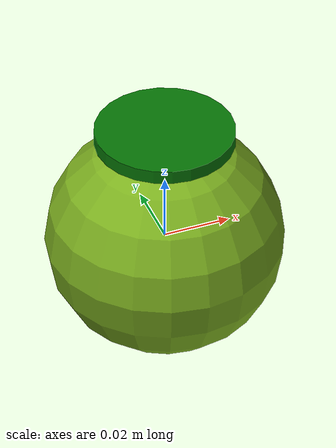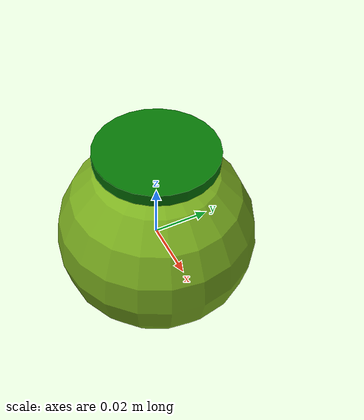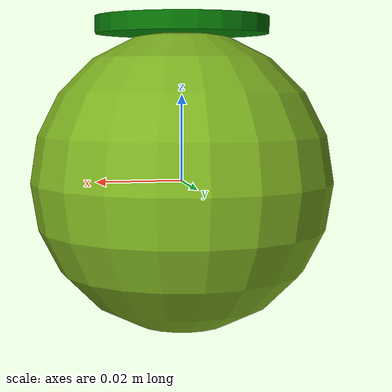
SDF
<?xml version="1.0"?>
<sdf version="1.10">
  <model name="strawberry_unripe_textured">
    <static>false</static>
    <self_collide>false</self_collide>
    <link name="fruit_link">
      <gravity>false</gravity>
      <velocity_decay><linear>0.5</linear><angular>0.5</angular></velocity_decay>
      <inertial>
        <mass>0.030</mass>
        <inertia><ixx>0.0000147</ixx><iyy>0.0000147</iyy><izz>0.0000147</izz></inertia>
      </inertial>
      <collision name="fruit_collision">
        <geometry><sphere><radius>0.035</radius></sphere></geometry>
        <surface><friction><ode><mu>1.0</mu><mu2>1.0</mu2></ode></friction></surface>
      </collision>
      <visual name="fruit_visual">
        <geometry><sphere><radius>0.035</radius></sphere></geometry>
        <material>
          <ambient>0.18 0.34 0.04 1</ambient>
          <diffuse>0.48 0.68 0.12 1</diffuse>
          <specular>0.06 0.06 0.06 1</specular>
          <pbr><metal>
            <albedo_map>model://strawberry_unripe_textured/materials/textures/unripe_strawberry_skin_v1.png</albedo_map>
            <metalness>0.0</metalness><roughness>0.64</roughness>
          </metal></pbr>
        </material>
      </visual>
      <visual name="calyx_visual">
        <pose>0 0 0.036 0 0 0</pose>
        <geometry><cylinder><radius>0.020</radius><length>0.004</length></cylinder></geometry>
        <material><ambient>0.01 0.20 0.01 1</ambient><diffuse>0.02 0.45 0.02 1</diffuse></material>
      </visual>
      <sensor name="fruit_contact_sensor" type="contact">
        <always_on>true</always_on><update_rate>100</update_rate>
        <contact><collision>fruit_collision</collision><topic>/strawberry/sim/fruit_contacts</topic></contact>
      </sensor>
    </link>
    <plugin filename="gz-sim-pose-publisher-system" name="gz::sim::systems::PosePublisher">
      <publish_link_pose>false</publish_link_pose><publish_visual_pose>false</publish_visual_pose>
      <publish_collision_pose>false</publish_collision_pose><publish_sensor_pose>false</publish_sensor_pose>
      <publish_model_pose>true</publish_model_pose><use_pose_vector_msg>true</use_pose_vector_msg>
      <update_frequency>60</update_frequency>
    </plugin>
  </model>
</sdf>
